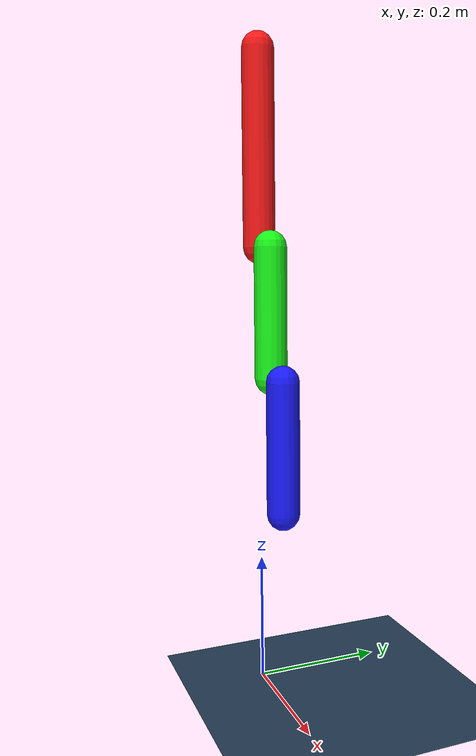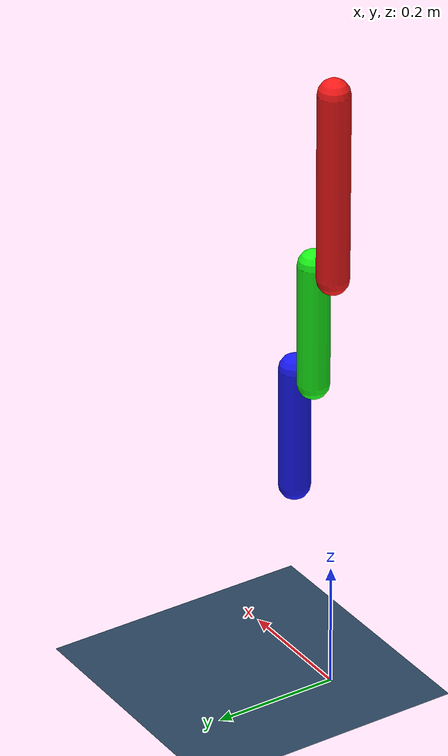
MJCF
<mujoco model="3-Link Manipulator">

	<option integrator="implicit"/>

	<asset>
		<texture name="grid" type="2d" builtin="checker" width="512" height="512" rgb1=".1 .2 .3" rgb2=".2 .3 .4"/>
		<material name="grid" texture="grid" texrepeat="1 1" texuniform="true" reflectance=".2"/>
	</asset>

	<worldbody>
	    <geom type="plane" size="0 0 0.1" material="grid"/>
		<light directional="false" pos="0 0 20" dir="0 0 -1" diffuse="1 1 1" active="true"/>

		<body name="body_1" pos="0.0 0.0 1.0" axisangle="1 0 0 180">
			<joint name="joint_1" type="hinge" pos="0.0 0.0 0.0" axis="1 0 0" damping="0.1"/>
			<geom type="capsule" size="0.025" fromto="0.0 0.0 0.0 0.0 0.0 0.3" rgba="1 0.1 0.1 1" mass="1.2"/>

			<body name="body_2" pos="0.05 0.0 0.3">
				<joint name="joint_2" type="hinge" pos="0.0 0.0 0.0" axis="1 0 0" damping="0.1"/>
				<geom type="capsule" size="0.025" fromto="0.0 0.0 0.0 0.0 0.0 0.2" rgba="0.1 1 0.1 1" mass="0.8"/>

				<body name="body_3" pos="0.05 0.0 0.2">
				<joint name="joint_3" type="hinge" pos="0.0 0.0 0.0" axis="1 0 0" damping="0.1"/>
				<geom type="capsule" size="0.025" fromto="0.0 0.0 0.0 0.0 0.0 0.2" rgba="0.1 0.1 1 1" mass="0.8"/>
			</body>
			</body>

		</body>

    </worldbody>

	<actuator>
		<motor name="motor_1" joint="joint_1"/>
		<motor name="motor_2" joint="joint_2"/>
		<motor name="motor_3" joint="joint_3"/>
	</actuator>

</mujoco>
